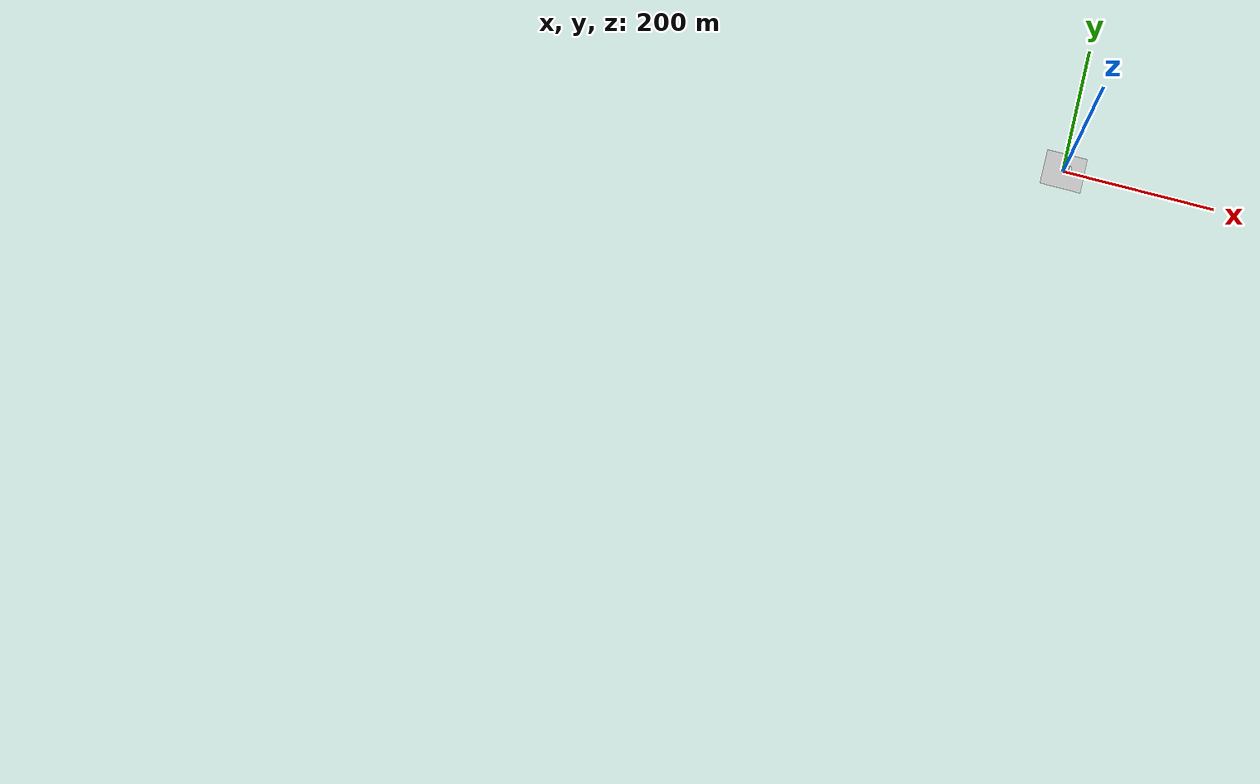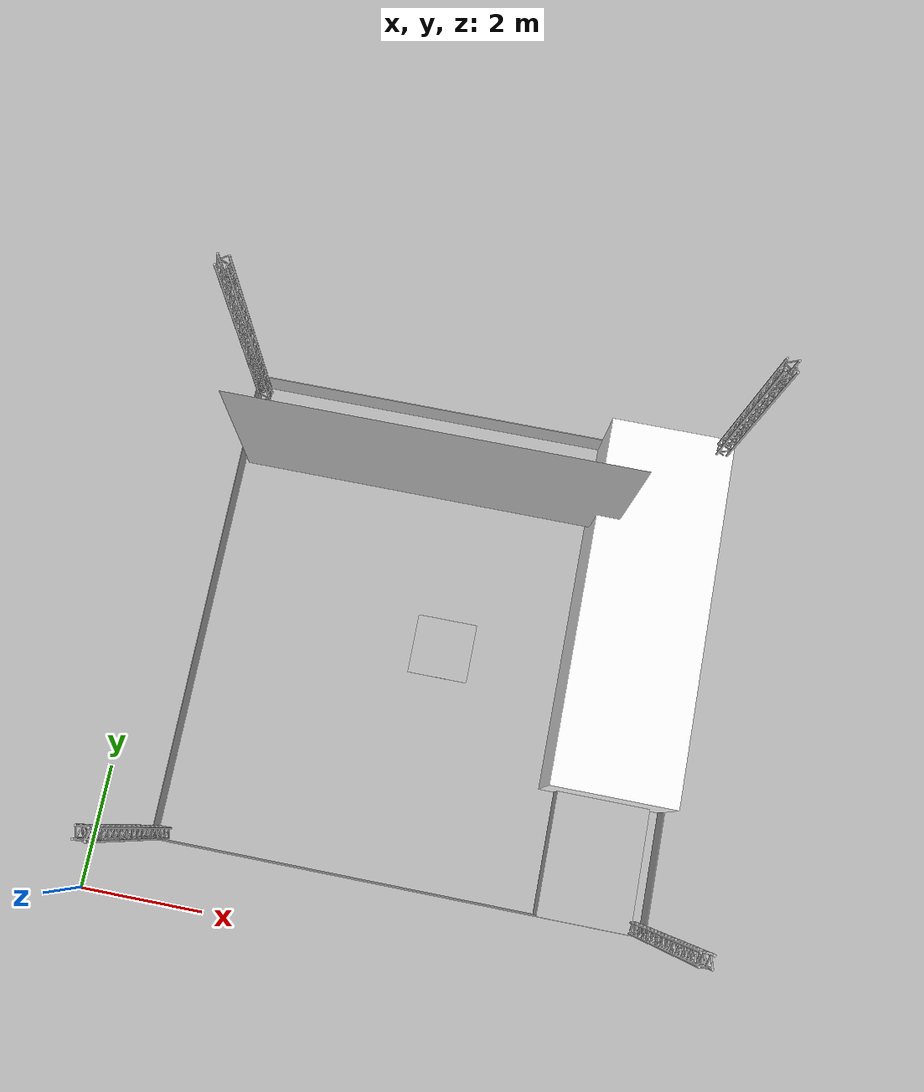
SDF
<?xml version="1.0" ?>
<sdf version="1.10">
  <world name="fase4_2025">
    <plugin
      filename="gz-sim-physics-system"
      name="gz::sim::systems::Physics">
    </plugin>
    <plugin
      filename="gz-sim-user-commands-system"
      name="gz::sim::systems::UserCommands">
    </plugin>
    <plugin
      filename="gz-sim-scene-broadcaster-system"
      name="gz::sim::systems::SceneBroadcaster">
    </plugin>
    <plugin
      filename="gz-sim-sensors-system"
      name="gz::sim::systems::Sensors">
      <render_engine>ogre2</render_engine>
    </plugin>
    <plugin
      filename="gz-sim-imu-system"
      name="gz::sim::systems::Imu">
    </plugin>
    <plugin
      filename="gz-sim-air-speed-system"
      name="gz::sim::systems::AirSpeed">
    </plugin>
    <plugin
      name='gz::sim::systems::AirPressure'
      filename='gz-sim-air-pressure-system'>
    </plugin>

    <light type="directional" name="sun">
      <cast_shadows>true</cast_shadows>
      <pose>0 0 20 0 0 0</pose>
      <ambient>0.8 0.8 0.8 1</ambient>
      <diffuse>1.0 1.0 1.0 1</diffuse>
      <specular>0.2 0.2 0.2 1</specular>
      <attenuation>
        <range>1000</range>
        <constant>0.9</constant>
        <linear>0.01</linear>
        <quadratic>0.001</quadratic>
      </attenuation>
      <direction>-0.5 0.1 -0.9</direction>
    </light>

    <!-- setup shadows {-->
    <scene>
      <shadows>false</shadows>
      <sky>
        <clouds />
      </sky>
    </scene>

    <!-- ground plane {-->
    <model name="ground_plane">
      <static>true</static>
      <link name="link">
        <collision name="collision">
          <pose>0 0 0 0 0 0</pose>
          <geometry>
            <plane>
              <normal>0 0 1</normal>
              <size>250 250</size>
            </plane>
          </geometry>
          <surface>
            <friction>
              <ode>
                <mu>1</mu>
                <mu2>1</mu2>
              </ode>
            </friction>
          </surface>
        </collision>
        <visual name="grass">
          <pose>0 0 0 0 0 0</pose>
          <cast_shadows>false</cast_shadows>
          <geometry>
            <mesh>
              <uri>file://grass_plane/meshes/grass_plane.dae</uri>
            </mesh>
          </geometry>
        </visual>
      </link>
    </model>

    <!-- THE VOID (for spawning objects out of camera view) {-->
    <model name='the_void'>
      <static>1</static>
      <link name='link'>
        <pose frame=''>0 0 0.1 0 -0 0</pose>
        <visual name='the_void'>
          <pose frame=''>0 0 2 0 -0 0</pose>
          <geometry>
            <sphere>
              <radius>0.25</radius>
            </sphere>
          </geometry>
          <material>
            <script>
              <uri>file://media/materials/scripts/Gazebo.material</uri>
              <name>Gazebo/Black</name>
            </script>
          </material>
        </visual>
        <self_collide>0</self_collide>
        <enable_wind>0</enable_wind>
        <kinematic>0</kinematic>
      </link>
      <pose frame=''>-1000 -1000 0 0 0 0</pose>
    </model>

    <!-- user camera {-->
    <gui>
      <camera name="camera">
        <pose>-4 -4 7 0 0.4 0.89</pose>
      </camera>
    </gui>

    <!-- Models Worlds -->

    <!-- THE ARENA MODEL -->
    <model name="arena">
      <include>
        <uri>model://arena_spawn</uri>
        <!-- Pose ( x y z r p y ) -->
        <pose>1 1 0.001 0 -0 0</pose>
      </include>
    </model>

    <!-- THE TAKEOFF PLATFORM MODEL -->
    <model name="takeoff_platform">
      <include>
        <uri>model://takeoff_platform</uri>
        <pose>8.0 2.0 0.0 0.0 -0.0 0.0</pose>
      </include>
    </model>

    <!-- THE BANNER MODEL -->
    <model name="banner">
      <include>
        <uri>model://banner</uri>
        <pose>1.0 -0.6 0.29 3.14 -0 1.57</pose>
      </include>
    </model>
    <model name="white_box_platform">
      <pose>8 6.0 0.75 0 0 0</pose>
      <static>true</static>
      <link name="link">
        <collision name="collision">
          <geometry>
            <box>
              <size>2 6 1.5</size> <!-- largura profundidade altura -->
            </box>
          </geometry>
        </collision>
        <visual name="visual">
          <geometry>
            <box>
              <size>2 6 1.5</size>
            </box>
          </geometry>
          <material>
            <ambient>1 1 1 1</ambient> <!-- cor branca -->
            <diffuse>1 1 1 1</diffuse>
          </material>
        </visual>
      </link>
    </model>

    <!-- THE SUSPENDED LANDING PLATFORM MODEL -->

    <!-- THE LANDING PLATFORM MODEL-->
    <model name="landing_platform_center">
      <include>
        <uri>model://landing_platform</uri>
        <pose>5 5 0.01 0 -0 0</pose>
      </include>
    </model>

  </world>
</sdf>

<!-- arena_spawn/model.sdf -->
<sdf version='1.6'>
  <model name='arena_spawn'>
    <link name='link_arena'>
      <inertial>
        <mass>15</mass>
        <inertia>
          <ixx>1</ixx>
          <ixy>1</ixy>
          <ixz>1</ixz>
          <iyy>1</iyy>
          <iyz>1</iyz>
          <izz>1</izz>
        </inertia>
      </inertial>
      <self_collide>1</self_collide>
      <enable_wind>0</enable_wind>
      <kinematic>0</kinematic>
      <pose frame=''>0 0 0 0 -0 0</pose>
      <visual name='visual'>
        <pose frame=''>0 0 0 0 -0 0</pose>
        <geometry>
          <mesh>
            <uri>model://arena_spawn/meshes/Arena.obj</uri>
            <scale>1 1 1</scale>
          </mesh>
        </geometry>
        <transparency>0</transparency>
        <cast_shadows>1</cast_shadows>
      </visual>
      <collision name='collision'>
        <laser_retro>0</laser_retro>
        <max_contacts>10</max_contacts>
        <pose frame=''>0 0 0 0 -0 0</pose>
        <geometry>
          <mesh>
            <uri>model://arena_spawn/meshes/Arena.obj</uri>
            <scale>1 1 1</scale>
          </mesh>
        </geometry>
        <surface>
          <friction>
            <ode>
              <mu>1</mu>
              <mu2>1</mu2>
              <fdir1>0 0 0</fdir1>
              <slip1>0</slip1>
              <slip2>0</slip2>
            </ode>
            <torsional>
              <coefficient>1</coefficient>
              <patch_radius>100</patch_radius>
              <surface_radius>100</surface_radius>
              <use_patch_radius>1</use_patch_radius>
              <ode>
                <slip>0</slip>
              </ode>
            </torsional>
          </friction>
          <bounce>
            <restitution_coefficient>0</restitution_coefficient>
            <threshold>1e+06</threshold>
          </bounce>
          <contact>
            <collide_without_contact>0</collide_without_contact>
            <collide_without_contact_bitmask>1</collide_without_contact_bitmask>
            <collide_bitmask>1</collide_bitmask>
            <ode>
              <soft_cfm>0</soft_cfm>
              <soft_erp>0.2</soft_erp>
              <kp>1e+13</kp>
              <kd>1</kd>
              <max_vel>0.01</max_vel>
              <min_depth>0</min_depth>
            </ode>
            <bullet>
              <split_impulse>1</split_impulse>
              <split_impulse_penetration_threshold>-0.01</split_impulse_penetration_threshold>
              <soft_cfm>0</soft_cfm>
              <soft_erp>0.2</soft_erp>
              <kp>1e+13</kp>
              <kd>1</kd>
            </bullet>
          </contact>
        </surface>
      </collision>
    </link>
    <link name='pilar_1'>
      <inertial>
        <mass>1</mass>
        <inertia>
          <ixx>0.166667</ixx>
          <ixy>0</ixy>
          <ixz>0</ixz>
          <iyy>0.166667</iyy>
          <iyz>0</iyz>
          <izz>0.166667</izz>
        </inertia>
      </inertial>
      <self_collide>1</self_collide>
      <enable_wind>0</enable_wind>
      <kinematic>0</kinematic>
      <pose frame=''>0 0 0 0 -0 0</pose>
      <visual name='visual'>
        <pose frame=''>0 0 0 0 -0 0</pose>
        <geometry>
          <mesh>
            <uri>model://arena_spawn/meshes/pilar.obj</uri>
            <scale>1 1 1</scale>
          </mesh>
        </geometry>
        <transparency>0</transparency>
        <cast_shadows>1</cast_shadows>
      </visual>
      <collision name='collision'>
        <laser_retro>0</laser_retro>
        <max_contacts>10</max_contacts>
        <pose frame=''>0 0 0 0 -0 0</pose>
        <geometry>
          <mesh>
            <uri>model://arena_spawn/meshes/pilar.obj</uri>
            <scale>1 1 1</scale>
          </mesh>
        </geometry>
        <surface>
          <friction>
            <ode>
              <mu>1</mu>
              <mu2>1</mu2>
              <fdir1>0 0 0</fdir1>
              <slip1>0</slip1>
              <slip2>0</slip2>
            </ode>
            <torsional>
              <coefficient>1</coefficient>
              <patch_radius>100</patch_radius>
              <surface_radius>100</surface_radius>
              <use_patch_radius>1</use_patch_radius>
              <ode>
                <slip>0</slip>
              </ode>
            </torsional>
          </friction>
          <bounce>
            <restitution_coefficient>0</restitution_coefficient>
            <threshold>1e+06</threshold>
          </bounce>
          <contact>
            <collide_without_contact>0</collide_without_contact>
            <collide_without_contact_bitmask>1</collide_without_contact_bitmask>
            <collide_bitmask>1</collide_bitmask>
            <ode>
              <soft_cfm>0</soft_cfm>
              <soft_erp>0.2</soft_erp>
              <kp>1e+13</kp>
              <kd>1</kd>
              <max_vel>0.01</max_vel>
              <min_depth>0</min_depth>
            </ode>
            <bullet>
              <split_impulse>1</split_impulse>
              <split_impulse_penetration_threshold>-0.01</split_impulse_penetration_threshold>
              <soft_cfm>0</soft_cfm>
              <soft_erp>0.2</soft_erp>
              <kp>1e+13</kp>
              <kd>1</kd>
            </bullet>
          </contact>
        </surface>
      </collision>
    </link>
    <link name='pilar_2'>
      <inertial>
        <mass>1</mass>
        <inertia>
          <ixx>0.166667</ixx>
          <ixy>0</ixy>
          <ixz>0</ixz>
          <iyy>0.166667</iyy>
          <iyz>0</iyz>
          <izz>0.166667</izz>
        </inertia>
      </inertial>
      <self_collide>1</self_collide>
      <enable_wind>0</enable_wind>
      <kinematic>0</kinematic>
      <pose frame=''>7.7 0 0 0 -0 0</pose>
      <visual name='visual'>
        <pose frame=''>0 0 0 0 -0 0</pose>
        <geometry>
          <mesh>
            <uri>model://arena_spawn/meshes/pilar.obj</uri>
            <scale>1 1 1</scale>
          </mesh>
        </geometry>
        <transparency>0</transparency>
        <cast_shadows>1</cast_shadows>
      </visual>
      <collision name='collision'>
        <laser_retro>0</laser_retro>
        <max_contacts>10</max_contacts>
        <pose frame=''>0 0 0 0 -0 0</pose>
        <geometry>
          <mesh>
            <uri>model://arena_spawn/meshes/pilar.obj</uri>
            <scale>1 1 1</scale>
          </mesh>
        </geometry>
        <surface>
          <friction>
            <ode>
              <mu>1</mu>
              <mu2>1</mu2>
              <fdir1>0 0 0</fdir1>
              <slip1>0</slip1>
              <slip2>0</slip2>
            </ode>
            <torsional>
              <coefficient>1</coefficient>
              <patch_radius>100</patch_radius>
              <surface_radius>100</surface_radius>
              <use_patch_radius>1</use_patch_radius>
              <ode>
                <slip>0</slip>
              </ode>
            </torsional>
          </friction>
          <bounce>
            <restitution_coefficient>0</restitution_coefficient>
            <threshold>1e+06</threshold>
          </bounce>
          <contact>
            <collide_without_contact>0</collide_without_contact>
            <collide_without_contact_bitmask>1</collide_without_contact_bitmask>
            <collide_bitmask>1</collide_bitmask>
            <ode>
              <soft_cfm>0</soft_cfm>
              <soft_erp>0.2</soft_erp>
              <kp>1e+13</kp>
              <kd>1</kd>
              <max_vel>0.01</max_vel>
              <min_depth>0</min_depth>
            </ode>
            <bullet>
              <split_impulse>1</split_impulse>
              <split_impulse_penetration_threshold>-0.01</split_impulse_penetration_threshold>
              <soft_cfm>0</soft_cfm>
              <soft_erp>0.2</soft_erp>
              <kp>1e+13</kp>
              <kd>1</kd>
            </bullet>
          </contact>
        </surface>
      </collision>
    </link>
    <link name='pilar_3'>
      <inertial>
        <mass>1</mass>
        <inertia>
          <ixx>0.166667</ixx>
          <ixy>0</ixy>
          <ixz>0</ixz>
          <iyy>0.166667</iyy>
          <iyz>0</iyz>
          <izz>0.166667</izz>
        </inertia>
      </inertial>
      <self_collide>1</self_collide>
      <enable_wind>0</enable_wind>
      <kinematic>0</kinematic>
      <pose frame=''>0 7.7 0 0 -0 0</pose>
      <visual name='visual'>
        <pose frame=''>0 0 0 0 -0 0</pose>
        <geometry>
          <mesh>
            <uri>model://arena_spawn/meshes/pilar.obj</uri>
            <scale>1 1 1</scale>
          </mesh>
        </geometry>
        <transparency>0</transparency>
        <cast_shadows>1</cast_shadows>
      </visual>
      <collision name='collision'>
        <laser_retro>0</laser_retro>
        <max_contacts>10</max_contacts>
        <pose frame=''>0 0 0 0 -0 0</pose>
        <geometry>
          <mesh>
            <uri>model://arena_spawn/meshes/pilar.obj</uri>
            <scale>1 1 1</scale>
          </mesh>
        </geometry>
        <surface>
          <friction>
            <ode>
              <mu>1</mu>
              <mu2>1</mu2>
              <fdir1>0 0 0</fdir1>
              <slip1>0</slip1>
              <slip2>0</slip2>
            </ode>
            <torsional>
              <coefficient>1</coefficient>
              <patch_radius>100</patch_radius>
              <surface_radius>100</surface_radius>
              <use_patch_radius>1</use_patch_radius>
              <ode>
                <slip>0</slip>
              </ode>
            </torsional>
          </friction>
          <bounce>
            <restitution_coefficient>0</restitution_coefficient>
            <threshold>1e+06</threshold>
          </bounce>
          <contact>
            <collide_without_contact>0</collide_without_contact>
            <collide_without_contact_bitmask>1</collide_without_contact_bitmask>
            <collide_bitmask>1</collide_bitmask>
            <ode>
              <soft_cfm>0</soft_cfm>
              <soft_erp>0.2</soft_erp>
              <kp>1e+13</kp>
              <kd>1</kd>
              <max_vel>0.01</max_vel>
              <min_depth>0</min_depth>
            </ode>
            <bullet>
              <split_impulse>1</split_impulse>
              <split_impulse_penetration_threshold>-0.01</split_impulse_penetration_threshold>
              <soft_cfm>0</soft_cfm>
              <soft_erp>0.2</soft_erp>
              <kp>1e+13</kp>
              <kd>1</kd>
            </bullet>
          </contact>
        </surface>
      </collision>
    </link>
    <link name='pilar_4'>
      <inertial>
        <mass>1</mass>
        <inertia>
          <ixx>0.166667</ixx>
          <ixy>0</ixy>
          <ixz>0</ixz>
          <iyy>0.166667</iyy>
          <iyz>0</iyz>
          <izz>0.166667</izz>
        </inertia>
      </inertial>
      <self_collide>1</self_collide>
      <enable_wind>0</enable_wind>
      <kinematic>0</kinematic>
      <pose frame=''>7.7 7.7 0 0 -0 0</pose>
      <visual name='visual'>
        <pose frame=''>0 0 0 0 -0 0</pose>
        <geometry>
          <mesh>
            <uri>model://arena_spawn/meshes/pilar.obj</uri>
            <scale>1 1 1</scale>
          </mesh>
        </geometry>
        <transparency>0</transparency>
        <cast_shadows>1</cast_shadows>
      </visual>
      <collision name='collision'>
        <laser_retro>0</laser_retro>
        <max_contacts>10</max_contacts>
        <pose frame=''>0 0 0 0 -0 0</pose>
        <geometry>
          <mesh>
            <uri>model://arena_spawn/meshes/pilar.obj</uri>
            <scale>1 1 1</scale>
          </mesh>
        </geometry>
        <surface>
          <friction>
            <ode>
              <mu>1</mu>
              <mu2>1</mu2>
              <fdir1>0 0 0</fdir1>
              <slip1>0</slip1>
              <slip2>0</slip2>
            </ode>
            <torsional>
              <coefficient>1</coefficient>
              <patch_radius>100</patch_radius>
              <surface_radius>100</surface_radius>
              <use_patch_radius>1</use_patch_radius>
              <ode>
                <slip>0</slip>
              </ode>
            </torsional>
          </friction>
          <bounce>
            <restitution_coefficient>0</restitution_coefficient>
            <threshold>1e+06</threshold>
          </bounce>
          <contact>
            <collide_without_contact>0</collide_without_contact>
            <collide_without_contact_bitmask>1</collide_without_contact_bitmask>
            <collide_bitmask>1</collide_bitmask>
            <ode>
              <soft_cfm>0</soft_cfm>
              <soft_erp>0.2</soft_erp>
              <kp>1e+13</kp>
              <kd>1</kd>
              <max_vel>0.01</max_vel>
              <min_depth>0</min_depth>
            </ode>
            <bullet>
              <split_impulse>1</split_impulse>
              <split_impulse_penetration_threshold>-0.01</split_impulse_penetration_threshold>
              <soft_cfm>0</soft_cfm>
              <soft_erp>0.2</soft_erp>
              <kp>1e+13</kp>
              <kd>1</kd>
            </bullet>
          </contact>
        </surface>
      </collision>
    </link>
    <static>1</static>
    <pose frame=''>0 0 0.0005 0 -0 0</pose>
  </model>
</sdf>

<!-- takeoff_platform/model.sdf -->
<sdf version='1.6'>
  <model name='takeoff_platform'>
    <link name='link_takeoff_platform'>
      <inertial>
        <mass>15</mass>
        <inertia>
          <ixx>1</ixx>
          <ixy>0</ixy>
          <ixz>0</ixz>
          <iyy>1</iyy>
          <iyz>0</iyz>
          <izz>1</izz>
        </inertia>
      </inertial>
      <self_collide>1</self_collide>
      <enable_wind>0</enable_wind>
      <kinematic>0</kinematic>
      <pose frame=''>0 0 0 0 -0 0</pose>
      <visual name='visual'>
        <pose frame=''>0 0 0 0 -0 0</pose>
        <geometry>
          <mesh>
            <uri>model://takeoff_platform/meshes/takeoff_platform.obj</uri>
            <scale>1 1 1</scale>
          </mesh>
        </geometry>
        <transparency>0</transparency>
        <cast_shadows>1</cast_shadows>
      </visual>
      <collision name='collision'>
        <laser_retro>0</laser_retro>
        <max_contacts>10</max_contacts>
        <pose frame=''>0 0 0 0 -0 0</pose>
        <geometry>
          <mesh>
            <uri>model://takeoff_platform/meshes/takeoff_platform.obj</uri>
            <scale>1 1 1</scale>
          </mesh>
        </geometry>
        <surface>
          <friction>
            <ode>
              <mu>1</mu>
              <mu2>1</mu2>
              <fdir1>0 0 0</fdir1>
              <slip1>0</slip1>
              <slip2>0</slip2>
            </ode>
            <torsional>
              <coefficient>1</coefficient>
              <patch_radius>100</patch_radius>
              <surface_radius>100</surface_radius>
              <use_patch_radius>1</use_patch_radius>
              <ode>
                <slip>0</slip>
              </ode>
            </torsional>
          </friction>
          <bounce>
            <restitution_coefficient>0</restitution_coefficient>
            <threshold>1e+06</threshold>
          </bounce>
          <contact>
            <collide_without_contact>0</collide_without_contact>
            <collide_without_contact_bitmask>1</collide_without_contact_bitmask>
            <collide_bitmask>1</collide_bitmask>
            <ode>
              <soft_cfm>0</soft_cfm>
              <soft_erp>0.2</soft_erp>
              <kp>1e+13</kp>
              <kd>1</kd>
              <max_vel>0.01</max_vel>
              <min_depth>0</min_depth>
            </ode>
            <bullet>
              <split_impulse>1</split_impulse>
              <split_impulse_penetration_threshold>-0.01</split_impulse_penetration_threshold>
              <soft_cfm>0</soft_cfm>
              <soft_erp>0.2</soft_erp>
              <kp>1e+13</kp>
              <kd>1</kd>
            </bullet>
          </contact>
        </surface>
      </collision>
    </link>
    <static>1</static>
    <pose frame=''>0 0 0.0005 0 -0 0</pose>
  </model>
</sdf>

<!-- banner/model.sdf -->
<sdf version='1.6'>
  <model name='banner'>
    <link name='link_0'>
      <inertial>
        <mass>1</mass>
        <inertia>
          <ixx>0.166667</ixx>
          <ixy>0</ixy>
          <ixz>0</ixz>
          <iyy>0.166667</iyy>
          <iyz>0</iyz>
          <izz>0.166667</izz>
        </inertia>
      </inertial>
      <pose>0 0 0 0 -0 0</pose>
      <visual name='visual'>
        <pose>0 0 0 0 -0 0</pose>
        <geometry>
          <mesh>
            <uri>model://banner/meshes/banner.obj</uri>
            <scale>1.0 1.0 1.0</scale>
          </mesh>
        </geometry>
        <transparency>0</transparency>
        <cast_shadows>1</cast_shadows>
      </visual>
      <collision name='collision'>
        <laser_retro>0</laser_retro>
        <max_contacts>10</max_contacts>
        <pose>0 0 0 0 -0 0</pose>
        <geometry>
          <mesh>
            <uri>model://banner/meshes/banner.obj</uri>
            <scale>1.0 1.0 1.0</scale>
          </mesh>
        </geometry>
      </collision>
    </link>
    <static>1</static>
    <allow_auto_disable>1</allow_auto_disable>
  </model>
</sdf>

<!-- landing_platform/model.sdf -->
<sdf version='1.6'>
  <model name='landing_platform'>
    <link name='link_landing_platform'>
      <inertial>
        <mass>1</mass>
        <inertia>
          <ixx>0.09318</ixx>
          <ixy>0.0</ixy>
          <ixz>0</ixz>
          <iyy>0.09318</iyy>
          <iyz>0</iyz>
          <izz>0.18634</izz>
        </inertia>
        <pose>0 0 0 0 -0 0</pose>
      </inertial>
      <self_collide>0</self_collide>
      <enable_wind>0</enable_wind>
      <kinematic>0</kinematic>
      <pose>0 0 0 0 -0 0</pose>
      <gravity>1</gravity>
      <visual name='visual'>
        <pose frame=''>0 0 0 0 -0 0</pose>
        <geometry>
          <mesh>
            <uri>model://landing_platform/meshes/landing_platform.obj</uri>
            <scale>1 1 1</scale>
          </mesh>
        </geometry>
        <transparency>0</transparency>
        <cast_shadows>1</cast_shadows>
      </visual>
      <collision name='collision'>
        <laser_retro>0</laser_retro>
        <max_contacts>10</max_contacts>
        <pose>0 0 0 0 -0 0</pose>
        <geometry>
          <box>
            <size>1 1 0.005</size>
          </box>
        </geometry>
      </collision>
      <surface>
        <friction>
          <ode>
            <mu>100</mu>
            <mu2>100</mu2>
            <fdir1>0 0 0</fdir1>
            <slip1>0</slip1>
            <slip2>0</slip2>
          </ode>
          <torsional>
            <coefficient>1</coefficient>
            <patch_radius>1</patch_radius>
            <surface_radius>1</surface_radius>
            <use_patch_radius>1</use_patch_radius>
            <ode>
              <slip>0</slip>
            </ode>
          </torsional>
        </friction>
        <bounce>
          <restitution_coefficient>1</restitution_coefficient>
          <threshold>1e+06</threshold>
        </bounce>
        <contact>
          <collide_without_contact>0</collide_without_contact>
          <collide_without_contact_bitmask>1</collide_without_contact_bitmask>
          <collide_bitmask>1</collide_bitmask>
          <ode>
            <soft_cfm>0</soft_cfm>
            <soft_erp>0.2</soft_erp>
            <kp>1e+13</kp>
            <kd>1</kd>
            <max_vel>0.01</max_vel>
            <min_depth>0</min_depth>
          </ode>
          <bullet>
            <split_impulse>1</split_impulse>
            <split_impulse_penetration_threshold>-0.01</split_impulse_penetration_threshold>
            <soft_cfm>0</soft_cfm>
            <soft_erp>0.2</soft_erp>
            <kp>1e+13</kp>
            <kd>1</kd>
          </bullet>
        </contact>
      </surface>
    </link>
    <static>0</static>
    <allow_auto_disable>1</allow_auto_disable>
  </model>
</sdf>
